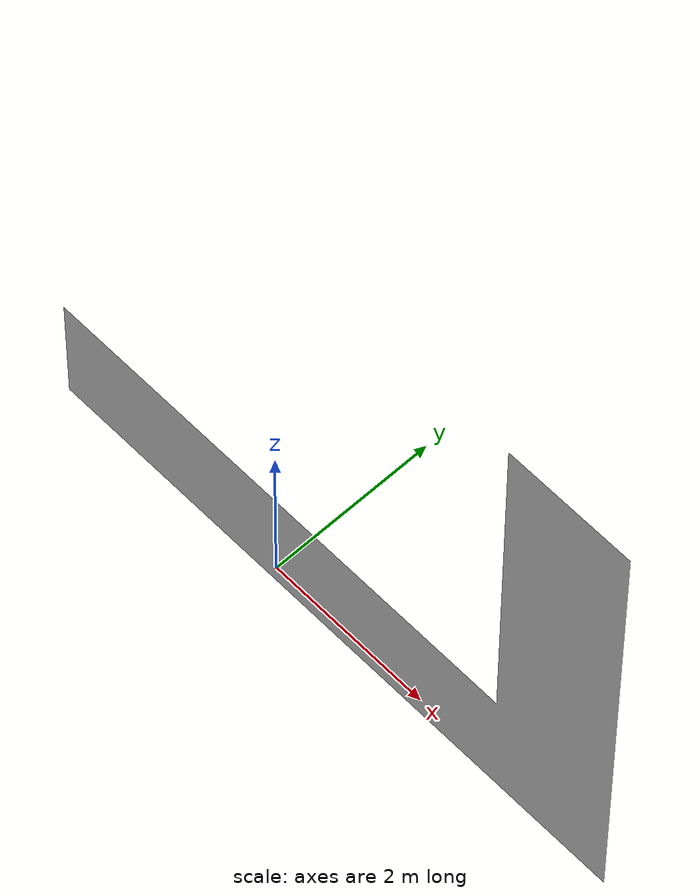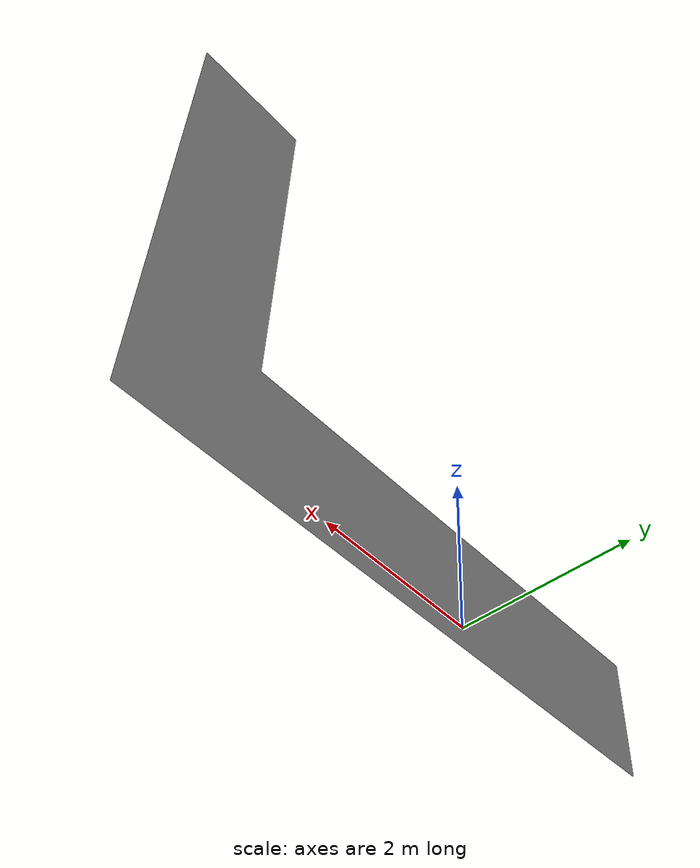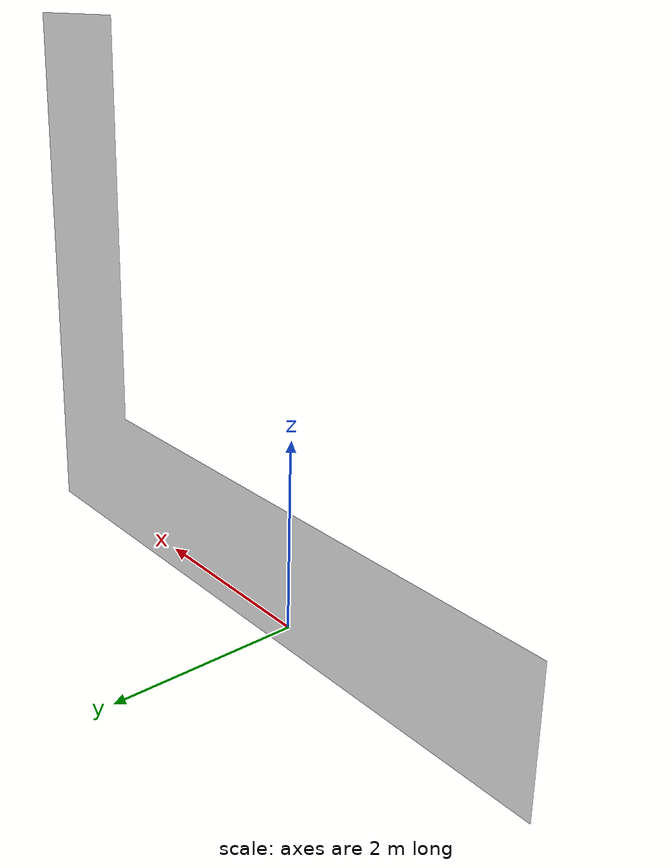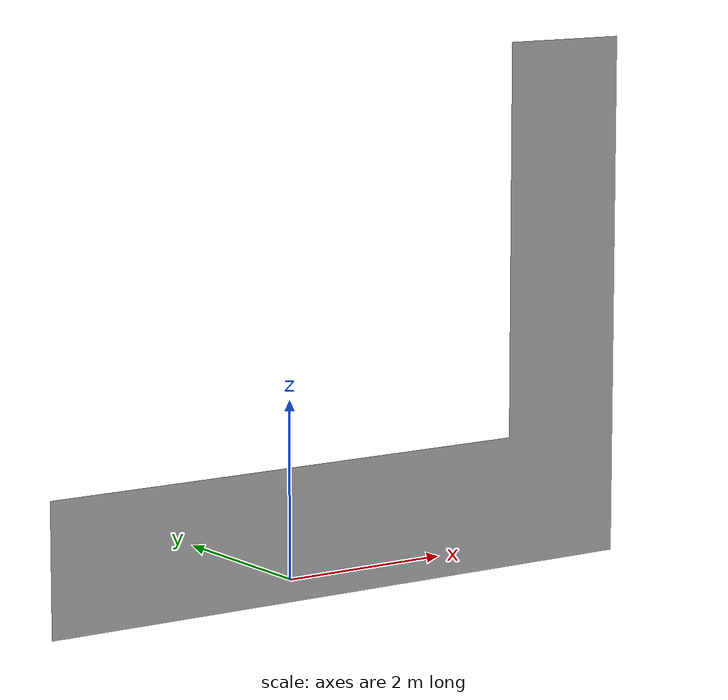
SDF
<?xml version="1.0" ?>
<sdf version="1.6">
    <model name="OFICIAL_LINHA_CURVA">
        <pose>0 0 0.5 0 0 0</pose>
        <static>true</static>
        <link name="link">
            <collision name="collision">
                <geometry>
                    <mesh>
                        <uri>model://OFICIAL_LINHA_CURVA/meshes/CURVA.obj</uri>
                        <scale>3 3 3</scale>
                    </mesh>
                </geometry>
            </collision>
            <visual name="visual">
                <geometry>
                    <mesh>
                        <uri>model://OFICIAL_LINHA_CURVA/meshes/CURVA.obj</uri>
                        <scale>3 3 3</scale>
                    </mesh>
                </geometry>
            </visual>
        </link>
    </model>
</sdf>
